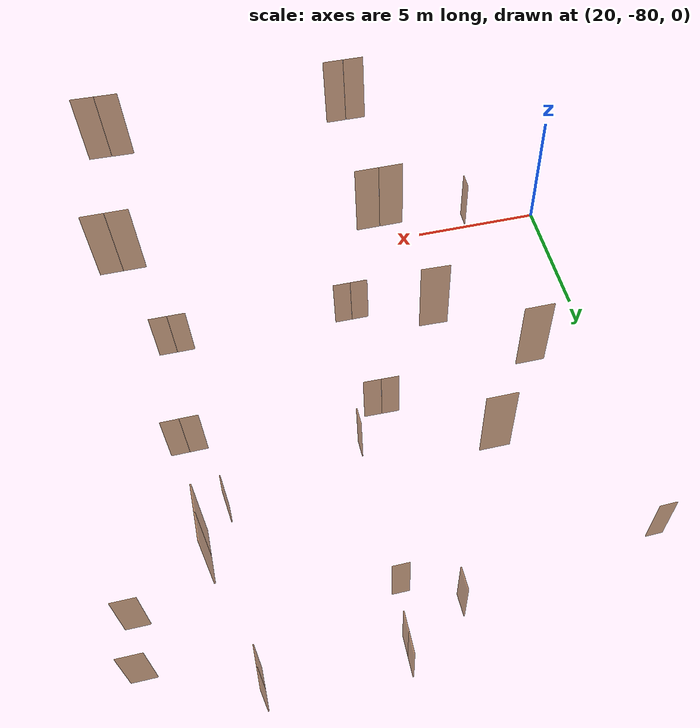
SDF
<sdf version="1.7">
 <world name="sim_world">
  <model name="door3">
   <pose>28.769682966110175 -76.18987657758007 0.0 0 0 3.1348896198746523</pose>
   <link name="right">
    <pose>0.3339172068411305 0 1.11 0 0 0</pose>
    <visual name="right_visual">
     <geometry><box><size>0.657834413682261 0.03 2.2</size></box></geometry>
     <material>
      <ambient>0.5 0.25 0 0.6</ambient>
      <diffuse>0.5 0.25 0 0.6</diffuse>
      <pbr><metal><metalness>0.0</metalness></metal></pbr>
     </material>
    </visual>
    <collision name="right_collision">
     <geometry><box><size>0.657834413682261 0.03 2.2</size></box></geometry>
     <surface><contact><collide_bitmask>0x02</collide_bitmask></contact></surface>
    </collision>
    <inertial>
     <mass>50.0</mass>
     <inertia><ixx>20.17041666666667</ixx><iyy>21.969775482602856</iyy><izz>1.806858815936184</izz></inertia>
    </inertial>
   </link>
   <joint name="right_joint" type="revolute">
    <parent>world</parent>
    <child>right</child>
    <axis><xyz>0 0 1</xyz><limit><lower>0</lower><upper>1.57</upper></limit></axis>
    <pose>0.3339172068411305 0 0 0 0 0</pose>
   </joint>
   <link name="left">
    <pose>-0.3339172068411305 0 1.11 0 0 0</pose>
    <visual name="left_visual">
     <geometry><box><size>0.657834413682261 0.03 2.2</size></box></geometry>
     <material>
      <ambient>0.5 0.25 0 0.6</ambient>
      <diffuse>0.5 0.25 0 0.6</diffuse>
      <pbr><metal><metalness>0.0</metalness></metal></pbr>
     </material>
    </visual>
    <collision name="left_collision">
     <geometry><box><size>0.657834413682261 0.03 2.2</size></box></geometry>
     <surface><contact><collide_bitmask>0x02</collide_bitmask></contact></surface>
    </collision>
    <inertial>
     <mass>50.0</mass>
     <inertia><ixx>20.17041666666667</ixx><iyy>21.969775482602856</iyy><izz>1.806858815936184</izz></inertia>
    </inertial>
   </link>
   <joint name="left_joint" type="revolute">
    <parent>world</parent>
    <child>left</child>
    <axis><xyz>0 0 1</xyz><limit><lower>-1.57</lower><upper>0</upper></limit></axis>
    <pose>-0.3339172068411305 0 0 0 0 0</pose>
   </joint>
   <plugin name="register_component" filename="libregister_component.so">
    <component name="Door">
     <v_max_door>0.5</v_max_door>
     <a_max_door>0.3</a_max_door>
     <a_nom_door>0.15</a_nom_door>
     <dx_min_door>0.01</dx_min_door>
     <f_max_door>500.0</f_max_door>
     <ros_interface>true</ros_interface>
     <door name="door3" type="DoubleSwingDoor" left_joint_name="left_joint" right_joint_name="right_joint"/>
    </component>
   </plugin>
  </model>
  <model name="door2">
   <pose>22.94748524611663 -80.48593791590486 0.0 0 0 1.5613574322392023</pose>
   <link name="right">
    <pose>0 0 1.11 0 0 0</pose>
    <visual name="right_visual">
     <geometry><box><size>0.6403317074376793 0.03 2.2</size></box></geometry>
     <material>
      <ambient>0.5 0.25 0 0.6</ambient>
      <diffuse>0.5 0.25 0 0.6</diffuse>
      <pbr><metal><metalness>0.0</metalness></metal></pbr>
     </material>
    </visual>
    <collision name="right_collision">
     <geometry><box><size>0.6403317074376793 0.03 2.2</size></box></geometry>
     <surface><contact><collide_bitmask>0x02</collide_bitmask></contact></surface>
    </collision>
    <inertial>
     <mass>50.0</mass>
     <inertia><ixx>20.17041666666667</ixx><iyy>21.87510289812523</iyy><izz>1.7121862314585574</izz></inertia>
    </inertial>
   </link>
   <joint name="right_joint" type="revolute">
    <parent>world</parent>
    <child>right</child>
    <axis><xyz>0 0 -1</xyz><limit><lower>0</lower><upper>1.57</upper></limit></axis>
    <pose>0.32516585371883966 0 0 0 0 0</pose>
   </joint>
   <plugin name="register_component" filename="libregister_component.so">
    <component name="Door">
     <v_max_door>0.5</v_max_door>
     <a_max_door>0.3</a_max_door>
     <a_nom_door>0.15</a_nom_door>
     <dx_min_door>0.01</dx_min_door>
     <f_max_door>500.0</f_max_door>
     <ros_interface>true</ros_interface>
     <door name="door2" type="SwingDoor" left_joint_name="empty_joint" right_joint_name="right_joint"/>
    </component>
   </plugin>
  </model>
  <model name="door4">
   <pose>28.625671960623674 -71.5499794193153 0.0 0 0 3.11905020500011</pose>
   <link name="right">
    <pose>0.32811675026087656 0 1.11 0 0 0</pose>
    <visual name="right_visual">
     <geometry><box><size>0.6462335005217531 0.03 2.2</size></box></geometry>
     <material>
      <ambient>0.5 0.25 0 0.6</ambient>
      <diffuse>0.5 0.25 0 0.6</diffuse>
      <pbr><metal><metalness>0.0</metalness></metal></pbr>
     </material>
    </visual>
    <collision name="right_collision">
     <geometry><box><size>0.6462335005217531 0.03 2.2</size></box></geometry>
     <surface><contact><collide_bitmask>0x02</collide_bitmask></contact></surface>
    </collision>
    <inertial>
     <mass>50.0</mass>
     <inertia><ixx>20.17041666666667</ixx><iyy>21.9067405716525</iyy><izz>1.743823904985828</izz></inertia>
    </inertial>
   </link>
   <joint name="right_joint" type="revolute">
    <parent>world</parent>
    <child>right</child>
    <axis><xyz>0 0 -1</xyz><limit><lower>0</lower><upper>1.57</upper></limit></axis>
    <pose>0.32811675026087656 0 0 0 0 0</pose>
   </joint>
   <link name="left">
    <pose>-0.32811675026087656 0 1.11 0 0 0</pose>
    <visual name="left_visual">
     <geometry><box><size>0.6462335005217531 0.03 2.2</size></box></geometry>
     <material>
      <ambient>0.5 0.25 0 0.6</ambient>
      <diffuse>0.5 0.25 0 0.6</diffuse>
      <pbr><metal><metalness>0.0</metalness></metal></pbr>
     </material>
    </visual>
    <collision name="left_collision">
     <geometry><box><size>0.6462335005217531 0.03 2.2</size></box></geometry>
     <surface><contact><collide_bitmask>0x02</collide_bitmask></contact></surface>
    </collision>
    <inertial>
     <mass>50.0</mass>
     <inertia><ixx>20.17041666666667</ixx><iyy>21.9067405716525</iyy><izz>1.743823904985828</izz></inertia>
    </inertial>
   </link>
   <joint name="left_joint" type="revolute">
    <parent>world</parent>
    <child>left</child>
    <axis><xyz>0 0 -1</xyz><limit><lower>-1.57</lower><upper>0</upper></limit></axis>
    <pose>-0.32811675026087656 0 0 0 0 0</pose>
   </joint>
   <plugin name="register_component" filename="libregister_component.so">
    <component name="Door">
     <v_max_door>0.5</v_max_door>
     <a_max_door>0.3</a_max_door>
     <a_nom_door>0.15</a_nom_door>
     <dx_min_door>0.01</dx_min_door>
     <f_max_door>500.0</f_max_door>
     <ros_interface>true</ros_interface>
     <door name="door4" type="DoubleSwingDoor" left_joint_name="left_joint" right_joint_name="right_joint"/>
    </component>
   </plugin>
  </model>
  <model name="door6">
   <pose>29.725404615578547 -70.23633375402764 0.0 0 0 1.5890064580823675</pose>
   <link name="right">
    <pose>0 0 1.11 0 0 0</pose>
    <visual name="right_visual">
     <geometry><box><size>0.6543363938306009 0.03 2.2</size></box></geometry>
     <material>
      <ambient>0.5 0.25 0 0.6</ambient>
      <diffuse>0.5 0.25 0 0.6</diffuse>
      <pbr><metal><metalness>0.0</metalness></metal></pbr>
     </material>
    </visual>
    <collision name="right_collision">
     <geometry><box><size>0.6543363938306009 0.03 2.2</size></box></geometry>
     <surface><contact><collide_bitmask>0x02</collide_bitmask></contact></surface>
    </collision>
    <inertial>
     <mass>50.0</mass>
     <inertia><ixx>20.17041666666667</ixx><iyy>21.950650484546816</iyy><izz>1.7877338178801472</izz></inertia>
    </inertial>
   </link>
   <joint name="right_joint" type="revolute">
    <parent>world</parent>
    <child>right</child>
    <axis><xyz>0 0 -1</xyz><limit><lower>0</lower><upper>1.57</upper></limit></axis>
    <pose>0.3321681969153005 0 0 0 0 0</pose>
   </joint>
   <plugin name="register_component" filename="libregister_component.so">
    <component name="Door">
     <v_max_door>0.5</v_max_door>
     <a_max_door>0.3</a_max_door>
     <a_nom_door>0.15</a_nom_door>
     <dx_min_door>0.01</dx_min_door>
     <f_max_door>500.0</f_max_door>
     <ros_interface>true</ros_interface>
     <door name="door6" type="SwingDoor" left_joint_name="empty_joint" right_joint_name="right_joint"/>
    </component>
   </plugin>
  </model>
  <model name="door7">
   <pose>20.669164965222645 -64.56711497717382 0.0 0 0 -3.1176010818886466</pose>
   <link name="right">
    <pose>0 0 1.11 0 0 0</pose>
    <visual name="right_visual">
     <geometry><box><size>0.6165885214717833 0.03 2.2</size></box></geometry>
     <material>
      <ambient>0.5 0.25 0 0.6</ambient>
      <diffuse>0.5 0.25 0 0.6</diffuse>
      <pbr><metal><metalness>0.0</metalness></metal></pbr>
     </material>
    </visual>
    <collision name="right_collision">
     <geometry><box><size>0.6165885214717833 0.03 2.2</size></box></geometry>
     <surface><contact><collide_bitmask>0x02</collide_bitmask></contact></surface>
    </collision>
    <inertial>
     <mass>50.0</mass>
     <inertia><ixx>20.17041666666667</ixx><iyy>21.75075585337817</iyy><izz>1.5878391867114994</izz></inertia>
    </inertial>
   </link>
   <joint name="right_joint" type="revolute">
    <parent>world</parent>
    <child>right</child>
    <axis><xyz>0 0 -1</xyz><limit><lower>0</lower><upper>1.57</upper></limit></axis>
    <pose>0.31329426073589167 0 0 0 0 0</pose>
   </joint>
   <plugin name="register_component" filename="libregister_component.so">
    <component name="Door">
     <v_max_door>0.5</v_max_door>
     <a_max_door>0.3</a_max_door>
     <a_nom_door>0.15</a_nom_door>
     <dx_min_door>0.01</dx_min_door>
     <f_max_door>500.0</f_max_door>
     <ros_interface>true</ros_interface>
     <door name="door7" type="SwingDoor" left_joint_name="empty_joint" right_joint_name="right_joint"/>
    </component>
   </plugin>
  </model>
  <model name="door8">
   <pose>29.60678530000837 -64.5586860140707 0.0 0 0 -3.138557686043686</pose>
   <link name="right">
    <pose>0 0 1.11 0 0 0</pose>
    <visual name="right_visual">
     <geometry><box><size>0.5918277429835981 0.03 2.2</size></box></geometry>
     <material>
      <ambient>0.5 0.25 0 0.6</ambient>
      <diffuse>0.5 0.25 0 0.6</diffuse>
      <pbr><metal><metalness>0.0</metalness></metal></pbr>
     </material>
    </visual>
    <collision name="right_collision">
     <geometry><box><size>0.5918277429835981 0.03 2.2</size></box></geometry>
     <surface><contact><collide_bitmask>0x02</collide_bitmask></contact></surface>
    </collision>
    <inertial>
     <mass>50.0</mass>
     <inertia><ixx>20.17041666666667</ixx><iyy>21.626083655687754</iyy><izz>1.4631669890210828</izz></inertia>
    </inertial>
   </link>
   <joint name="right_joint" type="revolute">
    <parent>world</parent>
    <child>right</child>
    <axis><xyz>0 0 1</xyz><limit><lower>0</lower><upper>1.57</upper></limit></axis>
    <pose>0.30091387149179905 0 0 0 0 0</pose>
   </joint>
   <plugin name="register_component" filename="libregister_component.so">
    <component name="Door">
     <v_max_door>0.5</v_max_door>
     <a_max_door>0.3</a_max_door>
     <a_nom_door>0.15</a_nom_door>
     <dx_min_door>0.01</dx_min_door>
     <f_max_door>500.0</f_max_door>
     <ros_interface>true</ros_interface>
     <door name="door8" type="SwingDoor" left_joint_name="empty_joint" right_joint_name="right_joint"/>
    </component>
   </plugin>
  </model>
  <model name="door11">
   <pose>27.80737384991823 -63.66659330454594 0.0 0 0 1.5901401190466442</pose>
   <link name="right">
    <pose>0 0 1.11 0 0 0</pose>
    <visual name="right_visual">
     <geometry><box><size>0.7733065094868109 0.03 2.2</size></box></geometry>
     <material>
      <ambient>0.5 0.25 0 0.6</ambient>
      <diffuse>0.5 0.25 0 0.6</diffuse>
      <pbr><metal><metalness>0.0</metalness></metal></pbr>
     </material>
    </visual>
    <collision name="right_collision">
     <geometry><box><size>0.7733065094868109 0.03 2.2</size></box></geometry>
     <surface><contact><collide_bitmask>0x02</collide_bitmask></contact></surface>
    </collision>
    <inertial>
     <mass>50.0</mass>
     <inertia><ixx>20.17041666666667</ixx><iyy>22.658345656727818</iyy><izz>2.495428990061147</izz></inertia>
    </inertial>
   </link>
   <joint name="right_joint" type="revolute">
    <parent>world</parent>
    <child>right</child>
    <axis><xyz>0 0 1</xyz><limit><lower>0</lower><upper>1.57</upper></limit></axis>
    <pose>0.39165325474340545 0 0 0 0 0</pose>
   </joint>
   <plugin name="register_component" filename="libregister_component.so">
    <component name="Door">
     <v_max_door>0.5</v_max_door>
     <a_max_door>0.3</a_max_door>
     <a_nom_door>0.15</a_nom_door>
     <dx_min_door>0.01</dx_min_door>
     <f_max_door>500.0</f_max_door>
     <ros_interface>true</ros_interface>
     <door name="door11" type="SwingDoor" left_joint_name="empty_joint" right_joint_name="right_joint"/>
    </component>
   </plugin>
  </model>
  <model name="door12">
   <pose>29.893474846121375 -62.41476502585291 0.0 0 0 1.569960739769454</pose>
   <link name="right">
    <pose>0.3404299190586607 0 1.11 0 0 0</pose>
    <visual name="right_visual">
     <geometry><box><size>0.6708598381173214 0.03 2.2</size></box></geometry>
     <material>
      <ambient>0.5 0.25 0 0.6</ambient>
      <diffuse>0.5 0.25 0 0.6</diffuse>
      <pbr><metal><metalness>0.0</metalness></metal></pbr>
     </material>
    </visual>
    <collision name="right_collision">
     <geometry><box><size>0.6708598381173214 0.03 2.2</size></box></geometry>
     <surface><contact><collide_bitmask>0x02</collide_bitmask></contact></surface>
    </collision>
    <inertial>
     <mass>50.0</mass>
     <inertia><ixx>20.17041666666667</ixx><iyy>22.041887176661664</iyy><izz>1.8789705099949947</izz></inertia>
    </inertial>
   </link>
   <joint name="right_joint" type="revolute">
    <parent>world</parent>
    <child>right</child>
    <axis><xyz>0 0 1</xyz><limit><lower>0</lower><upper>1.57</upper></limit></axis>
    <pose>0.3404299190586607 0 0 0 0 0</pose>
   </joint>
   <link name="left">
    <pose>-0.3404299190586607 0 1.11 0 0 0</pose>
    <visual name="left_visual">
     <geometry><box><size>0.6708598381173214 0.03 2.2</size></box></geometry>
     <material>
      <ambient>0.5 0.25 0 0.6</ambient>
      <diffuse>0.5 0.25 0 0.6</diffuse>
      <pbr><metal><metalness>0.0</metalness></metal></pbr>
     </material>
    </visual>
    <collision name="left_collision">
     <geometry><box><size>0.6708598381173214 0.03 2.2</size></box></geometry>
     <surface><contact><collide_bitmask>0x02</collide_bitmask></contact></surface>
    </collision>
    <inertial>
     <mass>50.0</mass>
     <inertia><ixx>20.17041666666667</ixx><iyy>22.041887176661664</iyy><izz>1.8789705099949947</izz></inertia>
    </inertial>
   </link>
   <joint name="left_joint" type="revolute">
    <parent>world</parent>
    <child>left</child>
    <axis><xyz>0 0 1</xyz><limit><lower>-1.57</lower><upper>0</upper></limit></axis>
    <pose>-0.3404299190586607 0 0 0 0 0</pose>
   </joint>
   <plugin name="register_component" filename="libregister_component.so">
    <component name="Door">
     <v_max_door>0.5</v_max_door>
     <a_max_door>0.3</a_max_door>
     <a_nom_door>0.15</a_nom_door>
     <dx_min_door>0.01</dx_min_door>
     <f_max_door>500.0</f_max_door>
     <ros_interface>true</ros_interface>
     <door name="door12" type="DoubleSwingDoor" left_joint_name="left_joint" right_joint_name="right_joint"/>
    </component>
   </plugin>
  </model>
  <model name="door13">
   <pose>34.468605229281195 -62.442971360642034 0.0 0 0 1.5796133810395</pose>
   <link name="right">
    <pose>0.3489471844600706 0 1.11 0 0 0</pose>
    <visual name="right_visual">
     <geometry><box><size>0.6878943689201412 0.03 2.2</size></box></geometry>
     <material>
      <ambient>0.5 0.25 0 0.6</ambient>
      <diffuse>0.5 0.25 0 0.6</diffuse>
      <pbr><metal><metalness>0.0</metalness></metal></pbr>
     </material>
    </visual>
    <collision name="right_collision">
     <geometry><box><size>0.6878943689201412 0.03 2.2</size></box></geometry>
     <surface><contact><collide_bitmask>0x02</collide_bitmask></contact></surface>
    </collision>
    <inertial>
     <mass>50.0</mass>
     <inertia><ixx>20.17041666666667</ixx><iyy>22.1383277616335</iyy><izz>1.9754110949668309</izz></inertia>
    </inertial>
   </link>
   <joint name="right_joint" type="revolute">
    <parent>world</parent>
    <child>right</child>
    <axis><xyz>0 0 -1</xyz><limit><lower>0</lower><upper>1.57</upper></limit></axis>
    <pose>0.3489471844600706 0 0 0 0 0</pose>
   </joint>
   <link name="left">
    <pose>-0.3489471844600706 0 1.11 0 0 0</pose>
    <visual name="left_visual">
     <geometry><box><size>0.6878943689201412 0.03 2.2</size></box></geometry>
     <material>
      <ambient>0.5 0.25 0 0.6</ambient>
      <diffuse>0.5 0.25 0 0.6</diffuse>
      <pbr><metal><metalness>0.0</metalness></metal></pbr>
     </material>
    </visual>
    <collision name="left_collision">
     <geometry><box><size>0.6878943689201412 0.03 2.2</size></box></geometry>
     <surface><contact><collide_bitmask>0x02</collide_bitmask></contact></surface>
    </collision>
    <inertial>
     <mass>50.0</mass>
     <inertia><ixx>20.17041666666667</ixx><iyy>22.1383277616335</iyy><izz>1.9754110949668309</izz></inertia>
    </inertial>
   </link>
   <joint name="left_joint" type="revolute">
    <parent>world</parent>
    <child>left</child>
    <axis><xyz>0 0 -1</xyz><limit><lower>-1.57</lower><upper>0</upper></limit></axis>
    <pose>-0.3489471844600706 0 0 0 0 0</pose>
   </joint>
   <plugin name="register_component" filename="libregister_component.so">
    <component name="Door">
     <v_max_door>0.5</v_max_door>
     <a_max_door>0.3</a_max_door>
     <a_nom_door>0.15</a_nom_door>
     <dx_min_door>0.01</dx_min_door>
     <f_max_door>500.0</f_max_door>
     <ros_interface>true</ros_interface>
     <door name="door13" type="DoubleSwingDoor" left_joint_name="left_joint" right_joint_name="right_joint"/>
    </component>
   </plugin>
  </model>
  <model name="door10">
   <pose>38.08370216657176 -63.6204960089962 0.0 0 0 3.141592653589793</pose>
   <link name="right">
    <pose>0 0 1.11 0 0 0</pose>
    <visual name="right_visual">
     <geometry><box><size>0.8446938643531945 0.03 2.2</size></box></geometry>
     <material>
      <ambient>0.5 0.25 0 0.6</ambient>
      <diffuse>0.5 0.25 0 0.6</diffuse>
      <pbr><metal><metalness>0.0</metalness></metal></pbr>
     </material>
    </visual>
    <collision name="right_collision">
     <geometry><box><size>0.8446938643531945 0.03 2.2</size></box></geometry>
     <surface><contact><collide_bitmask>0x02</collide_bitmask></contact></surface>
    </collision>
    <inertial>
     <mass>50.0</mass>
     <inertia><ixx>20.17041666666667</ixx><iyy>23.139615518649723</iyy><izz>2.976698851983054</izz></inertia>
    </inertial>
   </link>
   <joint name="right_joint" type="revolute">
    <parent>world</parent>
    <child>right</child>
    <axis><xyz>0 0 -1</xyz><limit><lower>0</lower><upper>1.57</upper></limit></axis>
    <pose>0.42734693217659725 0 0 0 0 0</pose>
   </joint>
   <plugin name="register_component" filename="libregister_component.so">
    <component name="Door">
     <v_max_door>0.5</v_max_door>
     <a_max_door>0.3</a_max_door>
     <a_nom_door>0.15</a_nom_door>
     <dx_min_door>0.01</dx_min_door>
     <f_max_door>500.0</f_max_door>
     <ros_interface>true</ros_interface>
     <door name="door10" type="SwingDoor" left_joint_name="empty_joint" right_joint_name="right_joint"/>
    </component>
   </plugin>
  </model>
  <model name="door9">
   <pose>38.13673127369653 -65.39471039886867 0.0 0 0 3.141592653589793</pose>
   <link name="right">
    <pose>0 0 1.11 0 0 0</pose>
    <visual name="right_visual">
     <geometry><box><size>0.832896310311886 0.03 2.2</size></box></geometry>
     <material>
      <ambient>0.5 0.25 0 0.6</ambient>
      <diffuse>0.5 0.25 0 0.6</diffuse>
      <pbr><metal><metalness>0.0</metalness></metal></pbr>
     </material>
    </visual>
    <collision name="right_collision">
     <geometry><box><size>0.832896310311886 0.03 2.2</size></box></geometry>
     <surface><contact><collide_bitmask>0x02</collide_bitmask></contact></surface>
    </collision>
    <inertial>
     <mass>50.0</mass>
     <inertia><ixx>20.17041666666667</ixx><iyy>23.05715109887981</iyy><izz>2.8942344322131404</izz></inertia>
    </inertial>
   </link>
   <joint name="right_joint" type="revolute">
    <parent>world</parent>
    <child>right</child>
    <axis><xyz>0 0 1</xyz><limit><lower>0</lower><upper>1.57</upper></limit></axis>
    <pose>0.421448155155943 0 0 0 0 0</pose>
   </joint>
   <plugin name="register_component" filename="libregister_component.so">
    <component name="Door">
     <v_max_door>0.5</v_max_door>
     <a_max_door>0.3</a_max_door>
     <a_nom_door>0.15</a_nom_door>
     <dx_min_door>0.01</dx_min_door>
     <f_max_door>500.0</f_max_door>
     <ros_interface>true</ros_interface>
     <door name="door9" type="SwingDoor" left_joint_name="empty_joint" right_joint_name="right_joint"/>
    </component>
   </plugin>
  </model>
  <model name="door5">
   <pose>35.76995928052328 -71.55423132965505 0.0 0 0 -3.1335801828914787</pose>
   <link name="right">
    <pose>0.3363384013789009 0 1.11 0 0 0</pose>
    <visual name="right_visual">
     <geometry><box><size>0.6626768027578018 0.03 2.2</size></box></geometry>
     <material>
      <ambient>0.5 0.25 0 0.6</ambient>
      <diffuse>0.5 0.25 0 0.6</diffuse>
      <pbr><metal><metalness>0.0</metalness></metal></pbr>
     </material>
    </visual>
    <collision name="right_collision">
     <geometry><box><size>0.6626768027578018 0.03 2.2</size></box></geometry>
     <surface><contact><collide_bitmask>0x02</collide_bitmask></contact></surface>
    </collision>
    <inertial>
     <mass>50.0</mass>
     <inertia><ixx>20.17041666666667</ixx><iyy>21.996418937138767</iyy><izz>1.8335022704720942</izz></inertia>
    </inertial>
   </link>
   <joint name="right_joint" type="revolute">
    <parent>world</parent>
    <child>right</child>
    <axis><xyz>0 0 -1</xyz><limit><lower>0</lower><upper>1.57</upper></limit></axis>
    <pose>0.3363384013789009 0 0 0 0 0</pose>
   </joint>
   <link name="left">
    <pose>-0.3363384013789009 0 1.11 0 0 0</pose>
    <visual name="left_visual">
     <geometry><box><size>0.6626768027578018 0.03 2.2</size></box></geometry>
     <material>
      <ambient>0.5 0.25 0 0.6</ambient>
      <diffuse>0.5 0.25 0 0.6</diffuse>
      <pbr><metal><metalness>0.0</metalness></metal></pbr>
     </material>
    </visual>
    <collision name="left_collision">
     <geometry><box><size>0.6626768027578018 0.03 2.2</size></box></geometry>
     <surface><contact><collide_bitmask>0x02</collide_bitmask></contact></surface>
    </collision>
    <inertial>
     <mass>50.0</mass>
     <inertia><ixx>20.17041666666667</ixx><iyy>21.996418937138767</iyy><izz>1.8335022704720942</izz></inertia>
    </inertial>
   </link>
   <joint name="left_joint" type="revolute">
    <parent>world</parent>
    <child>left</child>
    <axis><xyz>0 0 -1</xyz><limit><lower>-1.57</lower><upper>0</upper></limit></axis>
    <pose>-0.3363384013789009 0 0 0 0 0</pose>
   </joint>
   <plugin name="register_component" filename="libregister_component.so">
    <component name="Door">
     <v_max_door>0.5</v_max_door>
     <a_max_door>0.3</a_max_door>
     <a_nom_door>0.15</a_nom_door>
     <dx_min_door>0.01</dx_min_door>
     <f_max_door>500.0</f_max_door>
     <ros_interface>true</ros_interface>
     <door name="door5" type="DoubleSwingDoor" left_joint_name="left_joint" right_joint_name="right_joint"/>
    </component>
   </plugin>
  </model>
  <model name="door1">
   <pose>35.73196157474048 -76.17896234294034 0.0 0 0 3.1358409577189126</pose>
   <link name="right">
    <pose>0.3435944733193185 0 1.11 0 0 0</pose>
    <visual name="right_visual">
     <geometry><box><size>0.677188946638637 0.03 2.2</size></box></geometry>
     <material>
      <ambient>0.5 0.25 0 0.6</ambient>
      <diffuse>0.5 0.25 0 0.6</diffuse>
      <pbr><metal><metalness>0.0</metalness></metal></pbr>
     </material>
    </visual>
    <collision name="right_collision">
     <geometry><box><size>0.677188946638637 0.03 2.2</size></box></geometry>
     <surface><contact><collide_bitmask>0x02</collide_bitmask></contact></surface>
    </collision>
    <inertial>
     <mass>50.0</mass>
     <inertia><ixx>20.17041666666667</ixx><iyy>22.077436956039783</iyy><izz>1.914520289373112</izz></inertia>
    </inertial>
   </link>
   <joint name="right_joint" type="revolute">
    <parent>world</parent>
    <child>right</child>
    <axis><xyz>0 0 1</xyz><limit><lower>0</lower><upper>1.57</upper></limit></axis>
    <pose>0.3435944733193185 0 0 0 0 0</pose>
   </joint>
   <link name="left">
    <pose>-0.3435944733193185 0 1.11 0 0 0</pose>
    <visual name="left_visual">
     <geometry><box><size>0.677188946638637 0.03 2.2</size></box></geometry>
     <material>
      <ambient>0.5 0.25 0 0.6</ambient>
      <diffuse>0.5 0.25 0 0.6</diffuse>
      <pbr><metal><metalness>0.0</metalness></metal></pbr>
     </material>
    </visual>
    <collision name="left_collision">
     <geometry><box><size>0.677188946638637 0.03 2.2</size></box></geometry>
     <surface><contact><collide_bitmask>0x02</collide_bitmask></contact></surface>
    </collision>
    <inertial>
     <mass>50.0</mass>
     <inertia><ixx>20.17041666666667</ixx><iyy>22.077436956039783</iyy><izz>1.914520289373112</izz></inertia>
    </inertial>
   </link>
   <joint name="left_joint" type="revolute">
    <parent>world</parent>
    <child>left</child>
    <axis><xyz>0 0 1</xyz><limit><lower>-1.57</lower><upper>0</upper></limit></axis>
    <pose>-0.3435944733193185 0 0 0 0 0</pose>
   </joint>
   <plugin name="register_component" filename="libregister_component.so">
    <component name="Door">
     <v_max_door>0.5</v_max_door>
     <a_max_door>0.3</a_max_door>
     <a_nom_door>0.15</a_nom_door>
     <dx_min_door>0.01</dx_min_door>
     <f_max_door>500.0</f_max_door>
     <ros_interface>true</ros_interface>
     <door name="door1" type="DoubleSwingDoor" left_joint_name="left_joint" right_joint_name="right_joint"/>
    </component>
   </plugin>
  </model>
  <model name="door16">
   <pose>34.684838824482526 -68.70895473659056 0.0 0 0 1.5991199512423224</pose>
   <link name="right">
    <pose>0 0 1.11 0 0 0</pose>
    <visual name="right_visual">
     <geometry><box><size>0.6455362078870427 0.03 2.2</size></box></geometry>
     <material>
      <ambient>0.5 0.25 0 0.6</ambient>
      <diffuse>0.5 0.25 0 0.6</diffuse>
      <pbr><metal><metalness>0.0</metalness></metal></pbr>
     </material>
    </visual>
    <collision name="right_collision">
     <geometry><box><size>0.6455362078870427 0.03 2.2</size></box></geometry>
     <surface><contact><collide_bitmask>0x02</collide_bitmask></contact></surface>
    </collision>
    <inertial>
     <mass>50.0</mass>
     <inertia><ixx>20.17041666666667</ixx><iyy>21.902987482054936</iyy><izz>1.7400708153882636</izz></inertia>
    </inertial>
   </link>
   <joint name="right_joint" type="revolute">
    <parent>world</parent>
    <child>right</child>
    <axis><xyz>0 0 1</xyz><limit><lower>0</lower><upper>1.57</upper></limit></axis>
    <pose>0.32776810394352135 0 0 0 0 0</pose>
   </joint>
   <plugin name="register_component" filename="libregister_component.so">
    <component name="Door">
     <v_max_door>0.5</v_max_door>
     <a_max_door>0.3</a_max_door>
     <a_nom_door>0.15</a_nom_door>
     <dx_min_door>0.01</dx_min_door>
     <f_max_door>500.0</f_max_door>
     <ros_interface>true</ros_interface>
     <door name="door16" type="SwingDoor" left_joint_name="empty_joint" right_joint_name="right_joint"/>
    </component>
   </plugin>
  </model>
  <model name="N1_door1">
   <pose>35.86060639248187 -76.21242616893635 10.0 0 0 3.1174574409591713</pose>
   <link name="right">
    <pose>0.335253037549897 0 1.11 0 0 0</pose>
    <visual name="right_visual">
     <geometry><box><size>0.660506075099794 0.03 2.2</size></box></geometry>
     <material>
      <ambient>0.5 0.25 0 0.6</ambient>
      <diffuse>0.5 0.25 0 0.6</diffuse>
      <pbr><metal><metalness>0.0</metalness></metal></pbr>
     </material>
    </visual>
    <collision name="right_collision">
     <geometry><box><size>0.660506075099794 0.03 2.2</size></box></geometry>
     <surface><contact><collide_bitmask>0x02</collide_bitmask></contact></surface>
    </collision>
    <inertial>
     <mass>50.0</mass>
     <inertia><ixx>20.17041666666667</ixx><iyy>21.984451146848897</iyy><izz>1.821534480182228</izz></inertia>
    </inertial>
   </link>
   <joint name="right_joint" type="revolute">
    <parent>world</parent>
    <child>right</child>
    <axis><xyz>0 0 1</xyz><limit><lower>0</lower><upper>1.57</upper></limit></axis>
    <pose>0.335253037549897 0 0 0 0 0</pose>
   </joint>
   <link name="left">
    <pose>-0.335253037549897 0 1.11 0 0 0</pose>
    <visual name="left_visual">
     <geometry><box><size>0.660506075099794 0.03 2.2</size></box></geometry>
     <material>
      <ambient>0.5 0.25 0 0.6</ambient>
      <diffuse>0.5 0.25 0 0.6</diffuse>
      <pbr><metal><metalness>0.0</metalness></metal></pbr>
     </material>
    </visual>
    <collision name="left_collision">
     <geometry><box><size>0.660506075099794 0.03 2.2</size></box></geometry>
     <surface><contact><collide_bitmask>0x02</collide_bitmask></contact></surface>
    </collision>
    <inertial>
     <mass>50.0</mass>
     <inertia><ixx>20.17041666666667</ixx><iyy>21.984451146848897</iyy><izz>1.821534480182228</izz></inertia>
    </inertial>
   </link>
   <joint name="left_joint" type="revolute">
    <parent>world</parent>
    <child>left</child>
    <axis><xyz>0 0 1</xyz><limit><lower>-1.57</lower><upper>0</upper></limit></axis>
    <pose>-0.335253037549897 0 0 0 0 0</pose>
   </joint>
   <plugin name="register_component" filename="libregister_component.so">
    <component name="Door">
     <v_max_door>0.5</v_max_door>
     <a_max_door>0.3</a_max_door>
     <a_nom_door>0.15</a_nom_door>
     <dx_min_door>0.01</dx_min_door>
     <f_max_door>500.0</f_max_door>
     <ros_interface>true</ros_interface>
     <door name="N1_door1" type="DoubleSwingDoor" left_joint_name="left_joint" right_joint_name="right_joint"/>
    </component>
   </plugin>
  </model>
  <model name="N1_door2">
   <pose>28.601098791809623 -76.20332093211863 10.0 0 0 3.134986339740518</pose>
   <link name="right">
    <pose>0.30367828466065877 0 1.11 0 0 0</pose>
    <visual name="right_visual">
     <geometry><box><size>0.5973565693213175 0.03 2.2</size></box></geometry>
     <material>
      <ambient>0.5 0.25 0 0.6</ambient>
      <diffuse>0.5 0.25 0 0.6</diffuse>
      <pbr><metal><metalness>0.0</metalness></metal></pbr>
     </material>
    </visual>
    <collision name="right_collision">
     <geometry><box><size>0.5973565693213175 0.03 2.2</size></box></geometry>
     <surface><contact><collide_bitmask>0x02</collide_bitmask></contact></surface>
    </collision>
    <inertial>
     <mass>50.0</mass>
     <inertia><ixx>20.17041666666667</ixx><iyy>21.65347862879723</iyy><izz>1.4905619621305586</izz></inertia>
    </inertial>
   </link>
   <joint name="right_joint" type="revolute">
    <parent>world</parent>
    <child>right</child>
    <axis><xyz>0 0 1</xyz><limit><lower>0</lower><upper>1.57</upper></limit></axis>
    <pose>0.30367828466065877 0 0 0 0 0</pose>
   </joint>
   <link name="left">
    <pose>-0.30367828466065877 0 1.11 0 0 0</pose>
    <visual name="left_visual">
     <geometry><box><size>0.5973565693213175 0.03 2.2</size></box></geometry>
     <material>
      <ambient>0.5 0.25 0 0.6</ambient>
      <diffuse>0.5 0.25 0 0.6</diffuse>
      <pbr><metal><metalness>0.0</metalness></metal></pbr>
     </material>
    </visual>
    <collision name="left_collision">
     <geometry><box><size>0.5973565693213175 0.03 2.2</size></box></geometry>
     <surface><contact><collide_bitmask>0x02</collide_bitmask></contact></surface>
    </collision>
    <inertial>
     <mass>50.0</mass>
     <inertia><ixx>20.17041666666667</ixx><iyy>21.65347862879723</iyy><izz>1.4905619621305586</izz></inertia>
    </inertial>
   </link>
   <joint name="left_joint" type="revolute">
    <parent>world</parent>
    <child>left</child>
    <axis><xyz>0 0 1</xyz><limit><lower>-1.57</lower><upper>0</upper></limit></axis>
    <pose>-0.30367828466065877 0 0 0 0 0</pose>
   </joint>
   <plugin name="register_component" filename="libregister_component.so">
    <component name="Door">
     <v_max_door>0.5</v_max_door>
     <a_max_door>0.3</a_max_door>
     <a_nom_door>0.15</a_nom_door>
     <dx_min_door>0.01</dx_min_door>
     <f_max_door>500.0</f_max_door>
     <ros_interface>true</ros_interface>
     <door name="N1_door2" type="DoubleSwingDoor" left_joint_name="left_joint" right_joint_name="right_joint"/>
    </component>
   </plugin>
  </model>
  <model name="N1_door3">
   <pose>35.86149163378381 -71.47052405073045 10.0 0 0 -3.1405443274382145</pose>
   <link name="right">
    <pose>0.3166646294569969 0 1.11 0 0 0</pose>
    <visual name="right_visual">
     <geometry><box><size>0.6233292589139938 0.03 2.2</size></box></geometry>
     <material>
      <ambient>0.5 0.25 0 0.6</ambient>
      <diffuse>0.5 0.25 0 0.6</diffuse>
      <pbr><metal><metalness>0.0</metalness></metal></pbr>
     </material>
    </visual>
    <collision name="right_collision">
     <geometry><box><size>0.6233292589139938 0.03 2.2</size></box></geometry>
     <surface><contact><collide_bitmask>0x02</collide_bitmask></contact></surface>
    </collision>
    <inertial>
     <mass>50.0</mass>
     <inertia><ixx>20.17041666666667</ixx><iyy>21.785580687576125</iyy><izz>1.6226640209094532</izz></inertia>
    </inertial>
   </link>
   <joint name="right_joint" type="revolute">
    <parent>world</parent>
    <child>right</child>
    <axis><xyz>0 0 -1</xyz><limit><lower>0</lower><upper>1.57</upper></limit></axis>
    <pose>0.3166646294569969 0 0 0 0 0</pose>
   </joint>
   <link name="left">
    <pose>-0.3166646294569969 0 1.11 0 0 0</pose>
    <visual name="left_visual">
     <geometry><box><size>0.6233292589139938 0.03 2.2</size></box></geometry>
     <material>
      <ambient>0.5 0.25 0 0.6</ambient>
      <diffuse>0.5 0.25 0 0.6</diffuse>
      <pbr><metal><metalness>0.0</metalness></metal></pbr>
     </material>
    </visual>
    <collision name="left_collision">
     <geometry><box><size>0.6233292589139938 0.03 2.2</size></box></geometry>
     <surface><contact><collide_bitmask>0x02</collide_bitmask></contact></surface>
    </collision>
    <inertial>
     <mass>50.0</mass>
     <inertia><ixx>20.17041666666667</ixx><iyy>21.785580687576125</iyy><izz>1.6226640209094532</izz></inertia>
    </inertial>
   </link>
   <joint name="left_joint" type="revolute">
    <parent>world</parent>
    <child>left</child>
    <axis><xyz>0 0 -1</xyz><limit><lower>-1.57</lower><upper>0</upper></limit></axis>
    <pose>-0.3166646294569969 0 0 0 0 0</pose>
   </joint>
   <plugin name="register_component" filename="libregister_component.so">
    <component name="Door">
     <v_max_door>0.5</v_max_door>
     <a_max_door>0.3</a_max_door>
     <a_nom_door>0.15</a_nom_door>
     <dx_min_door>0.01</dx_min_door>
     <f_max_door>500.0</f_max_door>
     <ros_interface>true</ros_interface>
     <door name="N1_door3" type="DoubleSwingDoor" left_joint_name="left_joint" right_joint_name="right_joint"/>
    </component>
   </plugin>
  </model>
  <model name="N1_door4">
   <pose>28.601132056053846 -71.47528820468287 10.0 0 0 -3.1408810017747584</pose>
   <link name="right">
    <pose>0.332473437877921 0 1.11 0 0 0</pose>
    <visual name="right_visual">
     <geometry><box><size>0.654946875755842 0.03 2.2</size></box></geometry>
     <material>
      <ambient>0.5 0.25 0 0.6</ambient>
      <diffuse>0.5 0.25 0 0.6</diffuse>
      <pbr><metal><metalness>0.0</metalness></metal></pbr>
     </material>
    </visual>
    <collision name="right_collision">
     <geometry><box><size>0.654946875755842 0.03 2.2</size></box></geometry>
     <surface><contact><collide_bitmask>0x02</collide_bitmask></contact></surface>
    </collision>
    <inertial>
     <mass>50.0</mass>
     <inertia><ixx>20.17041666666667</ixx><iyy>21.953980875259745</iyy><izz>1.7910642085930766</izz></inertia>
    </inertial>
   </link>
   <joint name="right_joint" type="revolute">
    <parent>world</parent>
    <child>right</child>
    <axis><xyz>0 0 -1</xyz><limit><lower>0</lower><upper>1.57</upper></limit></axis>
    <pose>0.332473437877921 0 0 0 0 0</pose>
   </joint>
   <link name="left">
    <pose>-0.332473437877921 0 1.11 0 0 0</pose>
    <visual name="left_visual">
     <geometry><box><size>0.654946875755842 0.03 2.2</size></box></geometry>
     <material>
      <ambient>0.5 0.25 0 0.6</ambient>
      <diffuse>0.5 0.25 0 0.6</diffuse>
      <pbr><metal><metalness>0.0</metalness></metal></pbr>
     </material>
    </visual>
    <collision name="left_collision">
     <geometry><box><size>0.654946875755842 0.03 2.2</size></box></geometry>
     <surface><contact><collide_bitmask>0x02</collide_bitmask></contact></surface>
    </collision>
    <inertial>
     <mass>50.0</mass>
     <inertia><ixx>20.17041666666667</ixx><iyy>21.953980875259745</iyy><izz>1.7910642085930766</izz></inertia>
    </inertial>
   </link>
   <joint name="left_joint" type="revolute">
    <parent>world</parent>
    <child>left</child>
    <axis><xyz>0 0 -1</xyz><limit><lower>-1.57</lower><upper>0</upper></limit></axis>
    <pose>-0.332473437877921 0 0 0 0 0</pose>
   </joint>
   <plugin name="register_component" filename="libregister_component.so">
    <component name="Door">
     <v_max_door>0.5</v_max_door>
     <a_max_door>0.3</a_max_door>
     <a_nom_door>0.15</a_nom_door>
     <dx_min_door>0.01</dx_min_door>
     <f_max_door>500.0</f_max_door>
     <ros_interface>true</ros_interface>
     <door name="N1_door4" type="DoubleSwingDoor" left_joint_name="left_joint" right_joint_name="right_joint"/>
    </component>
   </plugin>
  </model>
  <model name="N1_door5">
   <pose>28.0240009800086 -67.68660520687706 10.0 0 0 3.1068990245676873</pose>
   <link name="right">
    <pose>0 0 1.11 0 0 0</pose>
    <visual name="right_visual">
     <geometry><box><size>0.7497963166726574 0.03 2.2</size></box></geometry>
     <material>
      <ambient>0.5 0.25 0 0.6</ambient>
      <diffuse>0.5 0.25 0 0.6</diffuse>
      <pbr><metal><metalness>0.0</metalness></metal></pbr>
     </material>
    </visual>
    <collision name="right_collision">
     <geometry><box><size>0.7497963166726574 0.03 2.2</size></box></geometry>
     <surface><contact><collide_bitmask>0x02</collide_bitmask></contact></surface>
    </collision>
    <inertial>
     <mass>50.0</mass>
     <inertia><ixx>20.17041666666667</ixx><iyy>22.509143818732856</iyy><izz>2.3462271520661835</izz></inertia>
    </inertial>
   </link>
   <joint name="right_joint" type="revolute">
    <parent>world</parent>
    <child>right</child>
    <axis><xyz>0 0 1</xyz><limit><lower>0</lower><upper>1.57</upper></limit></axis>
    <pose>0.37989815833632873 0 0 0 0 0</pose>
   </joint>
   <plugin name="register_component" filename="libregister_component.so">
    <component name="Door">
     <v_max_door>0.5</v_max_door>
     <a_max_door>0.3</a_max_door>
     <a_nom_door>0.15</a_nom_door>
     <dx_min_door>0.01</dx_min_door>
     <f_max_door>500.0</f_max_door>
     <ros_interface>true</ros_interface>
     <door name="N1_door5" type="SwingDoor" left_joint_name="empty_joint" right_joint_name="right_joint"/>
    </component>
   </plugin>
  </model>
  <model name="N1_door6">
   <pose>25.92336069274449 -65.91943493895167 10.0 0 0 3.1397451932118163</pose>
   <link name="right">
    <pose>0 0 1.11 0 0 0</pose>
    <visual name="right_visual">
     <geometry><box><size>0.7489478314035254 0.03 2.2</size></box></geometry>
     <material>
      <ambient>0.5 0.25 0 0.6</ambient>
      <diffuse>0.5 0.25 0 0.6</diffuse>
      <pbr><metal><metalness>0.0</metalness></metal></pbr>
     </material>
    </visual>
    <collision name="right_collision">
     <geometry><box><size>0.7489478314035254 0.03 2.2</size></box></geometry>
     <surface><contact><collide_bitmask>0x02</collide_bitmask></contact></surface>
    </collision>
    <inertial>
     <mass>50.0</mass>
     <inertia><ixx>20.17041666666667</ixx><iyy>22.503845225683516</iyy><izz>2.3409285590168483</izz></inertia>
    </inertial>
   </link>
   <joint name="right_joint" type="revolute">
    <parent>world</parent>
    <child>right</child>
    <axis><xyz>0 0 1</xyz><limit><lower>0</lower><upper>1.57</upper></limit></axis>
    <pose>0.3794739157017627 0 0 0 0 0</pose>
   </joint>
   <plugin name="register_component" filename="libregister_component.so">
    <component name="Door">
     <v_max_door>0.5</v_max_door>
     <a_max_door>0.3</a_max_door>
     <a_nom_door>0.15</a_nom_door>
     <dx_min_door>0.01</dx_min_door>
     <f_max_door>500.0</f_max_door>
     <ros_interface>true</ros_interface>
     <door name="N1_door6" type="SwingDoor" left_joint_name="empty_joint" right_joint_name="right_joint"/>
    </component>
   </plugin>
  </model>
  <model name="N1_door7">
   <pose>27.555294587355466 -63.67318421750165 10.0 0 0 -3.1414666400536</pose>
   <link name="right">
    <pose>0 0 1.11 0 0 0</pose>
    <visual name="right_visual">
     <geometry><box><size>0.751552460734205 0.03 2.2</size></box></geometry>
     <material>
      <ambient>0.5 0.25 0 0.6</ambient>
      <diffuse>0.5 0.25 0 0.6</diffuse>
      <pbr><metal><metalness>0.0</metalness></metal></pbr>
     </material>
    </visual>
    <collision name="right_collision">
     <geometry><box><size>0.751552460734205 0.03 2.2</size></box></geometry>
     <surface><contact><collide_bitmask>0x02</collide_bitmask></contact></surface>
    </collision>
    <inertial>
     <mass>50.0</mass>
     <inertia><ixx>20.17041666666667</ixx><iyy>22.520129588481833</iyy><izz>2.3572129218151616</izz></inertia>
    </inertial>
   </link>
   <joint name="right_joint" type="revolute">
    <parent>world</parent>
    <child>right</child>
    <axis><xyz>0 0 -1</xyz><limit><lower>0</lower><upper>1.57</upper></limit></axis>
    <pose>0.3807762303671025 0 0 0 0 0</pose>
   </joint>
   <plugin name="register_component" filename="libregister_component.so">
    <component name="Door">
     <v_max_door>0.5</v_max_door>
     <a_max_door>0.3</a_max_door>
     <a_nom_door>0.15</a_nom_door>
     <dx_min_door>0.01</dx_min_door>
     <f_max_door>500.0</f_max_door>
     <ros_interface>true</ros_interface>
     <door name="N1_door7" type="SwingDoor" left_joint_name="empty_joint" right_joint_name="right_joint"/>
    </component>
   </plugin>
  </model>
  <model name="N1_door10">
   <pose>34.5819648681084 -62.4136088708184 10.0 0 0 1.5787062101192455</pose>
   <link name="right">
    <pose>0.33288786137131166 0 1.11 0 0 0</pose>
    <visual name="right_visual">
     <geometry><box><size>0.6557757227426233 0.03 2.2</size></box></geometry>
     <material>
      <ambient>0.5 0.25 0 0.6</ambient>
      <diffuse>0.5 0.25 0 0.6</diffuse>
      <pbr><metal><metalness>0.0</metalness></metal></pbr>
     </material>
    </visual>
    <collision name="right_collision">
     <geometry><box><size>0.6557757227426233 0.03 2.2</size></box></geometry>
     <surface><contact><collide_bitmask>0x02</collide_bitmask></contact></surface>
    </collision>
    <inertial>
     <mass>50.0</mass>
     <inertia><ixx>20.17041666666667</ixx><iyy>21.95850749391088</iyy><izz>1.7955908272442083</izz></inertia>
    </inertial>
   </link>
   <joint name="right_joint" type="revolute">
    <parent>world</parent>
    <child>right</child>
    <axis><xyz>0 0 -1</xyz><limit><lower>0</lower><upper>1.57</upper></limit></axis>
    <pose>0.33288786137131166 0 0 0 0 0</pose>
   </joint>
   <link name="left">
    <pose>-0.33288786137131166 0 1.11 0 0 0</pose>
    <visual name="left_visual">
     <geometry><box><size>0.6557757227426233 0.03 2.2</size></box></geometry>
     <material>
      <ambient>0.5 0.25 0 0.6</ambient>
      <diffuse>0.5 0.25 0 0.6</diffuse>
      <pbr><metal><metalness>0.0</metalness></metal></pbr>
     </material>
    </visual>
    <collision name="left_collision">
     <geometry><box><size>0.6557757227426233 0.03 2.2</size></box></geometry>
     <surface><contact><collide_bitmask>0x02</collide_bitmask></contact></surface>
    </collision>
    <inertial>
     <mass>50.0</mass>
     <inertia><ixx>20.17041666666667</ixx><iyy>21.95850749391088</iyy><izz>1.7955908272442083</izz></inertia>
    </inertial>
   </link>
   <joint name="left_joint" type="revolute">
    <parent>world</parent>
    <child>left</child>
    <axis><xyz>0 0 -1</xyz><limit><lower>-1.57</lower><upper>0</upper></limit></axis>
    <pose>-0.33288786137131166 0 0 0 0 0</pose>
   </joint>
   <plugin name="register_component" filename="libregister_component.so">
    <component name="Door">
     <v_max_door>0.5</v_max_door>
     <a_max_door>0.3</a_max_door>
     <a_nom_door>0.15</a_nom_door>
     <dx_min_door>0.01</dx_min_door>
     <f_max_door>500.0</f_max_door>
     <ros_interface>true</ros_interface>
     <door name="N1_door10" type="DoubleSwingDoor" left_joint_name="left_joint" right_joint_name="right_joint"/>
    </component>
   </plugin>
  </model>
 </world>
</sdf>
